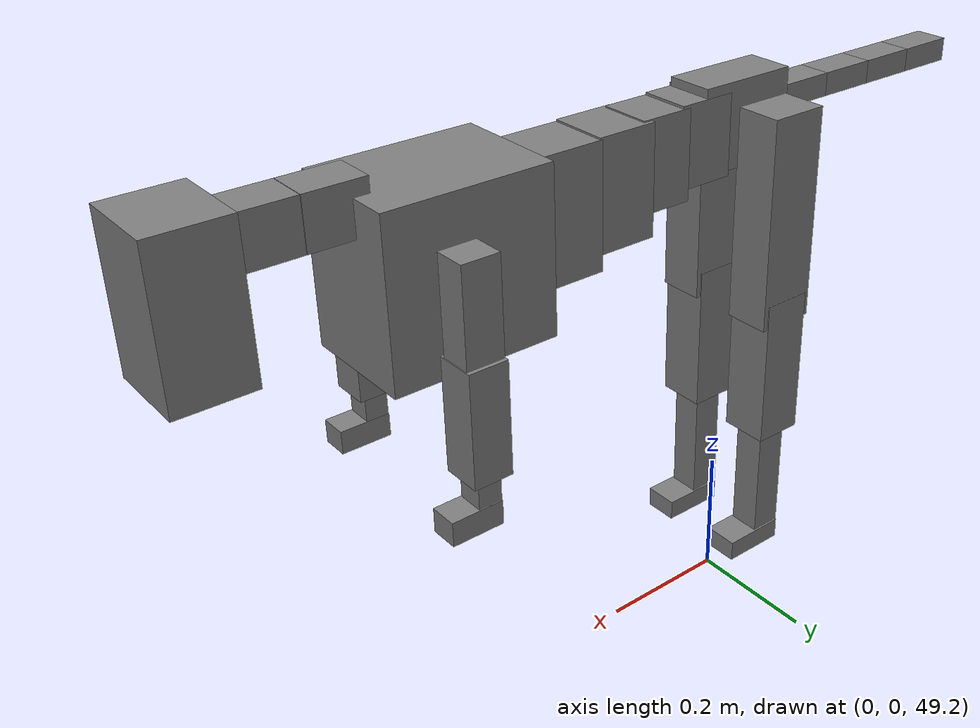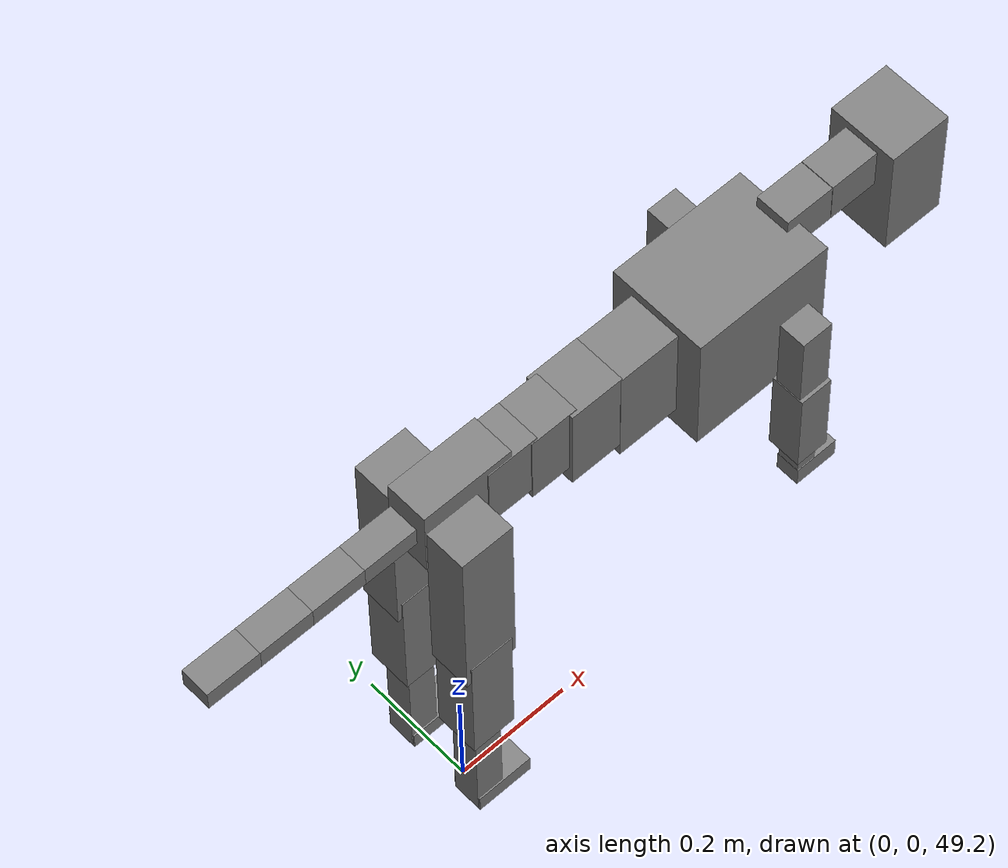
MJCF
<mujoco model="dog">

    <default>
        <joint armature="0.02" stiffness="1" damping="0.2" limited="true"/>
        <geom condim="3" friction="1 0.05 0.05" margin="0.01"/>
        <motor ctrllimited="true" ctrlrange="-1.0 1.0" forcelimited="true" gear="50"/>
    </default>

    <compiler inertiafromgeom="true" angle="radian"/>

    <option timestep="0.016" iterations="50" tolerance="1e-10" solver="Newton" jacobian="dense" cone="pyramidal"/>

    <size nconmax="20000" njmax="60000" nstack="5000000"/>
    <visual>
        <map force="0.1" zfar="30"/>
        <rgba haze="0.15 0.25 0.35 1"/>
        <quality shadowsize="2048"/>
        <global offwidth="800" offheight="800"/>
    </visual>

    <asset>
        <texture type="skybox" builtin="gradient" rgb1="0.3 0.5 0.7" rgb2="0 0 0" width="512" height="512"/>
        <texture name="texplane" type="2d" builtin="checker" rgb1=".2 .3 .4" rgb2=".1 0.15 0.2" width="512" height="512"
                 mark="cross" markrgb=".8 .8 .8"/>
        <texture name="texgeom" type="cube" builtin="flat" mark="cross" width="127" height="1278" rgb1="0.8 0.6 0.4"
                 rgb2="0.8 0.6 0.4" markrgb="1 1 1" random="0.01"/>

        <material name="matplane" reflectance="0.3" texture="texplane" texrepeat="1 1" texuniform="true"/>
        <material name="matgeom" texture="texgeom" texuniform="true" rgba="0.8 0.6 .4 1"/>
    </asset>

    <worldbody>
        <geom name="floor" pos="0 0 0" size="0 0 .25" type="plane" material="matplane" condim="3"/>

        <light directional="false" diffuse=".2 .2 .2" specular="0 0 0" pos="0 0 5" dir="0 0 -1" castshadow="false"/>
        <light mode="targetbodycom" target="torso" directional="false" diffuse=".8 .8 .8" specular="0.3 0.3 0.3"
               pos="0 0 4.0" dir="0 0 -1"/>

        <body name="root" pos="0 0 50">
            <freejoint name="root_1"/>
            <geom type="box" pos="0 0 -0.02" size="0.0774  0.0358  0.063" density="2030"/>

            <body name="spine1" pos="0.054 0 0">
                <joint name="spine1_y" axis="0 1 0" range="0 0.7" limited="true"/>
                <geom type="box" pos="0.02375 0 -0.03" size="0.04375  0.0375  0.05985" density="2030"/>

                <body name="spine2" pos="0.0612 0 0">
                    <joint name="spine2_y" axis="0 1 0" range="-0.15 0.15" limited="true"/>
                    <geom type="box" pos="0.03555  0  -0.04" size="0.04055  0.039  0.06615" density="2030"/>

                    <body name="spine3" pos="0.0730 0 0">
                        <joint name="spine3_y" axis="0 1 0" range="-0.15 0.15" limited="true"/>
                        <geom type="box" pos="0.03555  0  -0.057" size="0.04555  0.0445  0.081" density="2030"/>

                        <body name="spine4" pos="0.0780 0 0">
                            <joint name="spine4_y" axis="0 1 0" range="-0.15 0.15" limited="true"/>
                            <geom type="box" pos="0.05265  0  -0.07" size="0.05265  0.045  0.09135" density="2030"/>

                            <body name="torso" pos="0.1082 0 0">
                                <joint name="torso_y" axis="0 1 0" range="-0.15 0.15" limited="true"/>
                                <geom type="box" pos="0.11925  0  -0.085" size="0.11925  0.085  0.11745"
                                      density="2030"/>

                                <body name="neck1" pos="0.2160  0   0.0180">
                                    <joint name="neck1_y" axis="0 1 0" range="-1.2  -1" limited="true"/>
                                    <geom type="box" pos="0.0423  0  0" size="0.0423  0.03  0.036" density="2325"/>

                                    <body name="neck2" pos="0.0853  0  0">
                                        <joint name="neck2_y" axis="0 1 0" range="0.1  0" limited="true"/>
                                        <geom type="box" pos="0.0423  0  0" size="0.0423  0.03  0.036" density="2325"/>

                                        <body name="head" pos="0.0853  0  0">
                                            <joint name="head_y" axis="0 1 0" range="-0.3  -0.2" limited="true"/>
                                            <geom type="box" pos="0.0531  0  -0.055" size="0.0531  0.06  0.1044"
                                                  density="4030"/>

                                        </body>
                                    </body>
                                </body>

                                <body name="front_shoulder" pos="0.156  0   -0.0480">
                                    <joint name="front_shoulder_y" axis="0 1 0" range="-1 1.5" limited="true"/>
                                    <geom type="box" pos="0 0.13 -0.0543" size="0.0268  0.0229  0.0810" density="1158"/>
                                    <geom type="box" pos="0 -0.13 -0.0543" size="0.0268  0.0229  0.0810"
                                          density="1158"/>

                                    <body name="front_elbow" pos="0  0  -0.1087">
                                        <joint name="front_elbow_y" axis="0 1 0" range="-2 0" limited="true"/>
                                        <geom type="box" pos="0 0.13 -0.0798" size="0.0280  0.0286  0.0798"
                                              density="1081"/>
                                        <geom type="box" pos="0 -0.13 -0.0798" size="0.0280  0.0286  0.0798"
                                              density="1081"/>

                                        <body name="front_wrist" pos="0  0  -0.1596">
                                            <joint name="front_wrist_y" axis="0 1 0" range="-0.2 0" limited="true"/>
                                            <geom type="box" pos="0 0.13 -0.0266" size="0.0169  0.0187  0.0398"
                                                  density="1664"/>
                                            <geom type="box" pos="0 -0.13 -0.0266" size="0.0169  0.0187  0.0398"
                                                  density="1664"/>

                                            <body name="front_finger_end" pos="0  0  -0.0532">
                                                <joint name="front_finger_y" axis="0 1 0" range="-0.4 1"
                                                       limited="true"/>
                                                <geom type="box" pos="0.0203  0.13  -0.0023"
                                                      size="0.0373  0.0203  0.0173" density="1515"/>
                                                <geom type="box" pos="0.0203  -0.13  -0.0023"
                                                      size="0.0373  0.0203  0.0173" density="1515"/>

                                            </body>

                                        </body>
                                    </body>
                                </body>

                            </body>
                        </body>
                    </body>
                </body>
            </body>

            <body name="back_hip" pos="-0.03 0 -0.018">
                <joint name="back_hip_y" axis="0 1 0" range="-1.5 0.3" limited="true"/>
                <geom type="box" pos="0 0.07 -0.1373" size="0.0449  0.0352  0.1601" density="1154"/>
                <geom type="box" pos="0 -0.07 -0.1373" size="0.0449  0.0352  0.1601" density="1154"/>

                <body name="back_knee" pos="0  0  -0.2746">
                    <joint name="back_knee_y" axis="0 1 0" range="0 2.8" limited="true"/>
                    <geom type="box" pos="0 0.07 -0.0988" size="0.0374  0.0369  0.1143" density="1227"/>
                    <geom type="box" pos="0 -0.07 -0.0988" size="0.0374  0.0369  0.1143" density="1227"/>

                    <body name="back_ankle" pos="0  0  -0.1976">
                        <joint name="back_ankle_y" axis="0 1 0" range="-2.2 0" limited="true"/>
                        <geom type="box" pos="0 0.07 -0.1047" size="0.0239  0.0239  0.1159" density="1284"/>
                        <geom type="box" pos="0 -0.07 -0.1047" size="0.0239  0.0239  0.1159" density="1284"/>

                        <body name="back_toe_end" pos="0  0  -0.2093">
                            <joint name="back_toe_y" axis="0 1 0" range="-0.4 1" limited="true"/>
                            <geom type="box" pos="0.0266  0.07  -0.0009" size="0.0487  0.0266  0.0159" density="1515"/>
                            <geom type="box" pos="0.0266  -0.07  -0.0009" size="0.0487  0.0266  0.0159" density="1515"/>

                        </body>
                    </body>
                </body>
            </body>

            <body name="tail1" pos="-0.074 0 -0.006">
                <joint name="tail1_y" axis="0 1 0" range="-0.2 0.2" limited="true"/>
                <geom type="box" pos="-0.0536  0  0" size="0.045  0.025  0.0175" density="1587"/>

                <body name="tail2" pos="-0.09 0 0">
                    <joint name="tail2_y" axis="0 1 0" range="-0.2 0.2" limited="true"/>
                    <geom type="box" pos="-0.0536  0  0" size="0.045  0.025  0.0175" density="1587"/>

                    <body name="tail3" pos="-0.09 0 0">
                        <joint name="tail3_y" axis="0 1 0" range="-0.2 0.2" limited="true"/>
                        <geom type="box" pos="-0.0536  0  0" size="0.045  0.025  0.0175" density="1587"/>

                        <body name="tail4" pos="-0.09 0 0">
                            <joint name="tail4_y" axis="0 1 0" range="-0.2 0.2" limited="true"/>
                            <geom type="box" pos="-0.0536  0  0" size="0.045  0.025  0.0175" density="1587"/>

                        </body>
                    </body>
                </body>
            </body>
        </body>
    </worldbody>

    <actuator>
        <motor joint="spine1_y" forcerange="-150 150     "/>
        <motor joint="spine2_y" forcerange="-150 150     "/>
        <motor joint="spine3_y" forcerange="-150 150     "/>
        <motor joint="spine4_y" forcerange="-150 150     "/>
        <motor joint="torso_y" forcerange="-150 150     "/>
        <motor joint="neck1_y" forcerange="-100 100       "/>
        <motor joint="neck2_y" forcerange="-100 100       "/>
        <motor joint="head_y" forcerange="-150 150       "/>
        <motor joint="front_shoulder_y" forcerange="-152.59 100.38"/>
        <motor joint="front_elbow_y" forcerange="-155.17 153.03"/>
        <motor joint="front_wrist_y" forcerange="-96.75 53.23"/>
        <motor joint="front_finger_y" forcerange="-28.92 39.51"/>
        <motor joint="back_hip_y" forcerange="-277.12 392.14"/>
        <motor joint="back_knee_y" forcerange="-395.18 341.42"/>
        <motor joint="back_angle_y" forcerange="-79.13 203.28"/>
        <motor joint="back_toe_y" forcerange="-42.13 90.27"/>
        <motor joint="tail1_y" forcerange="-50 50     "/>
        <motor joint="tail2_y" forcerange="-50 50     "/>
        <motor joint="tail3_y" forcerange="-50 50     "/>
        <motor joint="tail4_y" forcerange="-50 50     "/>
    </actuator>
</mujoco>
